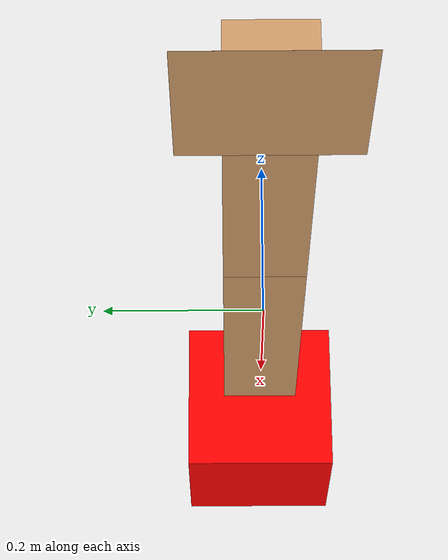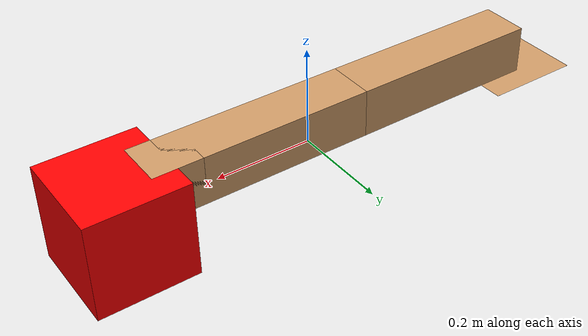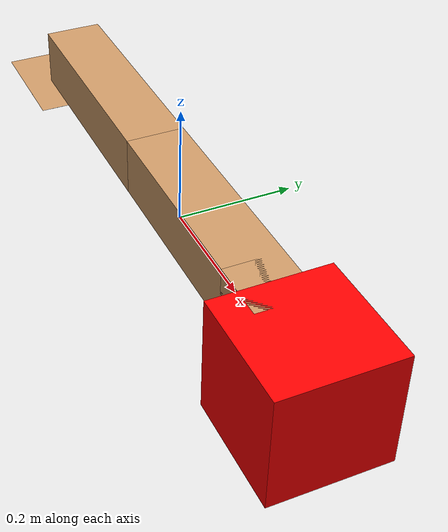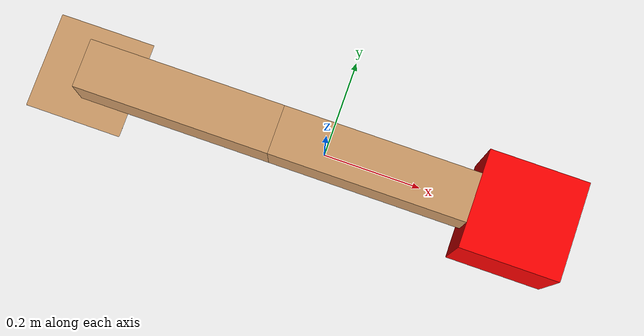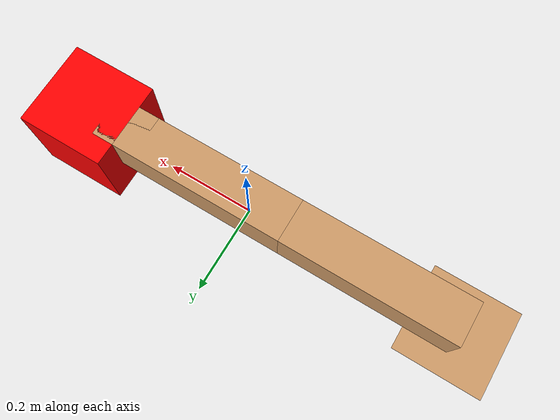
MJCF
<mujoco model="dual_arm_system">
    <compiler angle="radian"/>

    <default>
        <joint armature="0.1" damping="1" limited="true"/>
        <geom conaffinity="0" contype="0" density="100" rgba="0.8 0.6 0.4 1"/>
    </default>

    <option gravity="0 0 -9.81" timestep="0.001">
        <flag energy="enable"/>
    </option>

    <worldbody>
        <!-- First robotic arm -->
<body name="base1" pos="-0.5 0 0">
    <geom size="0.1 0.1 0.00001" type="box"/>
    <body name="arm1_link1" pos="0 0 0.05">
    <inertial pos="0 0 0" mass="0.1" diaginertia="0.01 0.01 0.01"/>
        <!-- 添加第一个关节处的传感器站点 -->
        <site name="force_sensor1" pos="0 0 0" size="0.01"/>
        <joint name="arm1_joint1" axis="0 0 1" range="-3.14 3.14"/>
        <geom size="0.2 0.05 0.05" pos="0.2 0 0" type="box"/>
        <body name="arm1_link2" pos="0.4 0 0">
            <!-- 添加第二个关节处的传感器站点 -->
            <site name="force_sensor2" pos="0 0 0" size="0.01"/>
            <inertial pos="0 0 0" mass="0.1" diaginertia="0.01 0.01 0.01"/>
            <joint name="arm1_joint2" axis="0 0 1" range="-3.14 3.14"/>
            <geom size="0.2 0.05 0.05" pos="0.2 0 0" type="box"/>
            <body name="gripper1" pos="0.4 0 0">
                <geom size="0.05 0.05 0.05" type="box"/>
            </body>
        </body>
    </body>
</body>

        <!-- Object to be grasped -->
        <body name="object" pos="0.4 0 0">
        <inertial pos="0 0 0" mass="1" diaginertia="0.01 0.01 0.01"/>
            <joint type="free"/>
            <geom size="0.1 0.1 0.1" type="box" rgba="1 0 0 1"/>
        </body>
    </worldbody>

    <!-- Weld constraints for grasping -->
    <equality>
        <!-- Initially disabled constraints (active="false") -->
        <weld name="grasp1" body1="gripper1" body2="object" solref="0.01 1" solimp=".9 .9 0.01" active="true"/>

    </equality>
<!-- 在model标签内添加传感器配置 -->
<sensor>
    <!-- 第一个关节的6维力传感器 -->
    <force name="force_sensor1" site="force_sensor1"/>
    <torque name="torque_sensor1" site="force_sensor1"/>

</sensor>
    <!-- Actuators for joint control -->
    <actuator>
        <position name="pos_servo1" joint="arm1_joint1" kp="100" ctrlrange="-3.14 3.14"/>
        <position name="pos_servo2" joint="arm1_joint2" kp="100" ctrlrange="-3.14 3.14"/>

    </actuator>
</mujoco>
